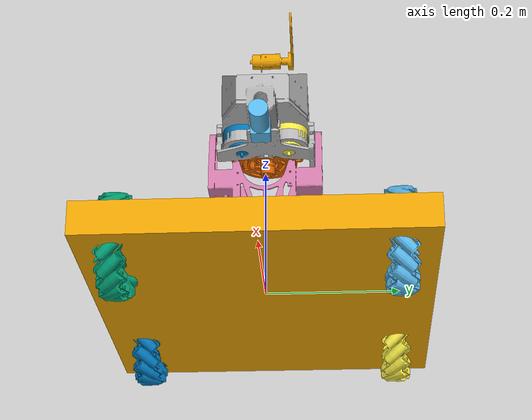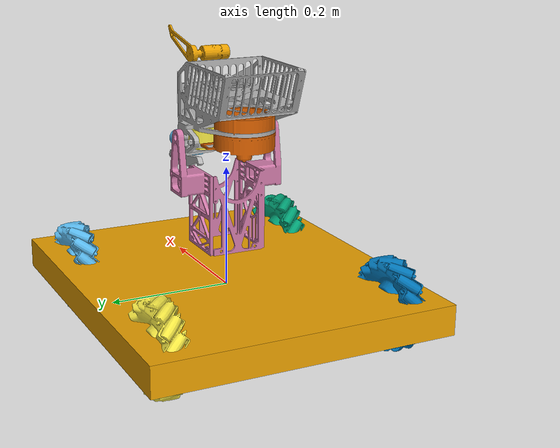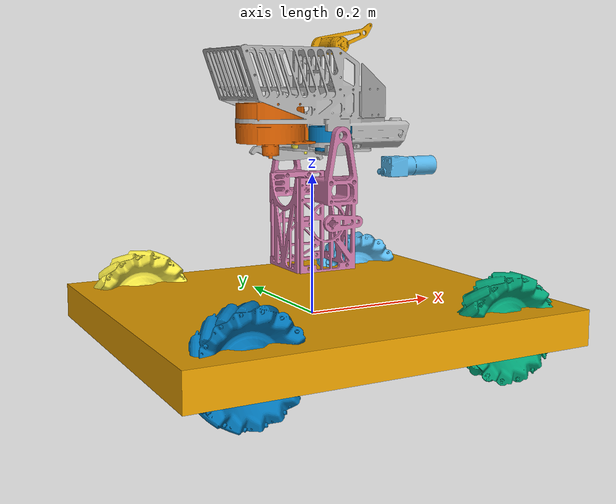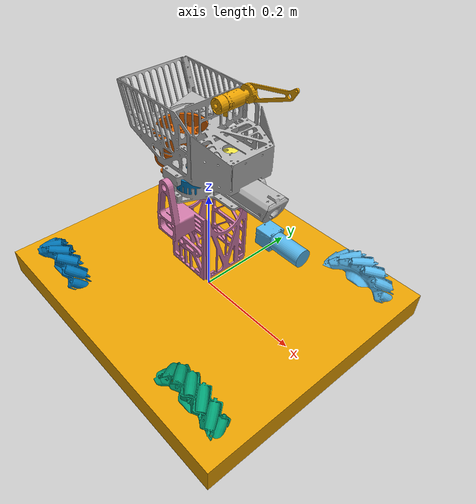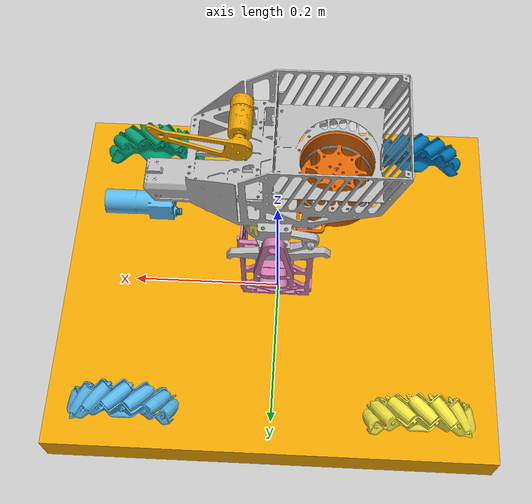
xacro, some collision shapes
<?xml version="1.0"?>
<robot xmlns:xacro="http://www.ros.org/wiki/xacro" name="standard3">

    <xacro:arg name="load_chassis" default="true"/>
    <xacro:arg name="load_gimbal" default="true"/>
    <xacro:arg name="load_shooter" default="true"/>
    <xacro:arg name="camera_link" default="camera_link"/>
    <xacro:arg name="camera_optical_frame" default="camera_optical_frame"/>
    <xacro:arg name="use_simulation" default="true"/>
    <xacro:arg name="roller_type" default="realistic"/>

    <xacro:if value="$(arg load_chassis)">
        <xacro:include filename="$(find rm_description)/urdf/standard/chassis.urdf.xacro"/>
        <xacro:chassis roller_type="$(arg roller_type)"/>
        <xacro:include filename="$(find rm_description)/urdf/common/imu.urdf.xacro"/>
        <xacro:IMU connected_to="base_link" imu_name="base_imu" simulation="true"
                   xyz="0.0 -0.165 0.0" rpy="0 0 ${pi}"/>
    </xacro:if>

    <xacro:if value="$(arg load_gimbal)">
        <xacro:include filename="$(find rm_description)/urdf/standard/gimbal.urdf.xacro"/>
        <xacro:include filename="$(find rm_description)/urdf/standard3/gimbal.transmission.urdf.xacro"/>
        <xacro:include filename="$(find rm_description)/urdf/common/camera.urdf.xacro"/>
        <xacro:camera_sensor xyz="0.127 0 -0.038" rpy="0 0 0" frame_id="$(arg camera_link)" parent="pitch"
                             camera_sim="$(arg use_simulation)"/>
        <xacro:camera_optical_frame xyz="0.089 -0.004 -0.053" rpy="1.593 0.0 1.567"
                                    frame_id="$(arg camera_optical_frame)" parent="pitch"
                                    camera_sim="$(arg use_simulation)"/>
    </xacro:if>

    <xacro:if value="$(arg load_shooter)">
        <xacro:include filename="$(find rm_description)/urdf/standard/shooter.urdf.xacro"/>
        <xacro:include filename="$(find rm_description)/urdf/standard3/shooter.transmission.urdf.xacro"/>
    </xacro:if>

    <xacro:if value="$(arg use_simulation)">
        <gazebo>
            <plugin name="rm_ros_control" filename="librm_robot_hw_sim.so">
                <robotNamespace>/</robotNamespace>
                <robotSimType>rm_gazebo/RmRobotHWSim</robotSimType>
            </plugin>
        </gazebo>
    </xacro:if>

</robot>

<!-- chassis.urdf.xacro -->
<robot xmlns:xacro="http://www.ros.org/wiki/xacro">

    <xacro:include filename="$(find rm_description)/urdf/common/mecanum_wheel.urdf.xacro"/>

    <!-- https://upload.wikimedia.org/wikipedia/commons/5/52/Wheelbase_and_Track.png -->
    <xacro:property name="wheel_track" value="0.380"/>
    <xacro:property name="wheel_base" value="0.395"/>
    <xacro:property name="wheel_offset_z" value="0.0"/>

    <xacro:macro name="chassis" params="roller_type">

        <link name="base_link">
            <inertial>
                <mass value="10.56"/>
                <origin xyz="-0.025077  0  0.055047"/>
                <inertia ixx="2.247e-1" ixy="-1.139e-5" ixz="2.983e-2" iyy="3.771e-1"
                         iyz="3.3454e-6" izz="4.803e-1"/>
            </inertial>
            <visual>
                <origin xyz="0 0 0" rpy="0 0 0"/>
                <geometry>
                    <mesh filename="package://rm_description/meshes/standard/base.stl" scale="0.001 0.001 0.001"/>
                </geometry>
            </visual>
            <collision>
                <origin xyz="0 0 0" rpy="0 0 0"/>
                <geometry>
                    <box size="0.580 0.500 0.050"/>
                </geometry>
            </collision>
        </link>

        <xacro:mecanum_wheel prefix="left_front" connected_to="base_link"
                             wheel_x_offset="${wheel_track/2}" wheel_y_offset="${wheel_base/2}"
                             wheel_z_offset="${wheel_offset_z}"
                             reflect="1" roller_type="${roller_type}"/>
        <xacro:mecanum_wheel prefix="right_front" connected_to="base_link"
                             wheel_x_offset="${wheel_track/2}" wheel_y_offset="${-wheel_base/2}"
                             wheel_z_offset="${wheel_offset_z}"
                             reflect="-1" roller_type="${roller_type}"/>
        <xacro:mecanum_wheel prefix="left_back" connected_to="base_link"
                             wheel_x_offset="${-wheel_track/2}" wheel_y_offset="${wheel_base/2}"
                             wheel_z_offset="${wheel_offset_z}"
                             reflect="-1" roller_type="${roller_type}"/>
        <xacro:mecanum_wheel prefix="right_back" connected_to="base_link"
                             wheel_x_offset="${-wheel_track/2}" wheel_y_offset="${-wheel_base/2}"
                             wheel_z_offset="${wheel_offset_z}"
                             reflect="1" roller_type="${roller_type}"/>
        <xacro:wheel_transmission prefix="left_front" mechanical_reduction="19.2032"/>
        <xacro:wheel_transmission prefix="right_front" mechanical_reduction="-19.2032"/>
        <xacro:wheel_transmission prefix="left_back" mechanical_reduction="19.2032"/>
        <xacro:wheel_transmission prefix="right_back" mechanical_reduction="-19.2032"/>

    </xacro:macro>

</robot>

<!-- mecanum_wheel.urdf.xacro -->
<robot xmlns:xacro="http://www.ros.org/wiki/xacro" name="mecanum_wheel">

    <xacro:property name="wheel_radius" value="0.07625"/>
    <xacro:property name="roller_radius" value="0.009"/>
    <xacro:property name="wheel_joint_effort" value="10"/>
    <xacro:property name="wheel_joint_velocity" value="70"/>

    <xacro:macro name="roller" params="prefix suffix theta roller_type">
        <!-- rotation math: roller_joint_axis -->
        <xacro:property name="sqrt_2_2" value="${sqrt(2)/2}"/>
        <xacro:property name="roller_joint_axis_x" value="${cos(theta) * sqrt_2_2}"/>
        <xacro:property name="roller_joint_axis_y" value="${-reflect * sqrt_2_2}"/>
        <xacro:property name="roller_joint_axis_z" value="${sin(theta) * sqrt_2_2}"/>
        <!-- rotation math: get quaternion between x_axis (1,0,0) and roller_joint_axis
        https://stackoverflow.com/questions/1171849/finding-quaternion-representing-the-rotation-from-one-vector-to-another -->
        <xacro:property name="quat_x" value="${0}"/>
        <xacro:property name="quat_y" value="${roller_joint_axis_z}"/>
        <xacro:property name="quat_z" value="${-roller_joint_axis_y}"/>
        <xacro:property name="quat_w" value="${-(1+roller_joint_axis_x)}"/>
        <xacro:property name="quat_length" value="${sqrt(quat_y*quat_y + quat_z * quat_z+quat_w * quat_w)}"/>
        <xacro:property name="quat_normal_x" value="${0}"/>
        <xacro:property name="quat_normal_y" value="${quat_y/quat_length}"/>
        <xacro:property name="quat_normal_z" value="${quat_z/quat_length}"/>
        <xacro:property name="quat_normal_w" value="${quat_w/quat_length}"/>

        <!--  link  -->
        <link name="${prefix}_roller_${suffix}">
            <collision>
                <xacro:if value="${roller_type=='realistic'}">
                    <!--  quat_xyzw dosen't work ?! covert to rpy-->
                    <origin rpy="${atan2(2. * (quat_normal_w * quat_normal_x + quat_normal_y * quat_normal_z),
                              1. - 2. * (quat_normal_x * quat_normal_x + quat_normal_y * quat_normal_y))}
                     ${asin(2. * (quat_normal_w * quat_normal_y - quat_normal_z * quat_normal_x))}
                     ${atan2(2. * (quat_normal_w * quat_normal_z + quat_normal_x * quat_normal_y),
                              1. - 2. * (quat_normal_y * quat_normal_y + quat_normal_z * quat_normal_z))}"
                            xyz="0 0 0"/>
                    <geometry>
                        <mesh filename="package://rm_description/meshes/common/roller.stl" scale="0.001 0.001 0.001"/>
                    </geometry>
                </xacro:if>
                <xacro:if value="${roller_type=='simple'}">
                    <geometry>
                        <sphere radius="${roller_radius}"/>
                    </geometry>
                </xacro:if>
            </collision>
            <inertial>
                <mass value="0.036"/>
                <inertia ixx="3128e-9" ixy="0.0" ixz="0.0" iyy="3128e-9" iyz="0.0" izz="3128e-9"/>
            </inertial>
        </link>

        <joint name="${prefix}_roller_${suffix}_joint" type="continuous">
            <origin
                    xyz="${(wheel_radius-roller_radius)*cos(theta-pi/2)} 0 ${(wheel_radius-roller_radius)*sin(theta-pi/2)}"
                    rpy="0 0 0"/>
            <axis xyz="${roller_joint_axis_x} ${roller_joint_axis_y} ${roller_joint_axis_z}"/>
            <dynamics damping="0.0" friction="0.001"/>
            <parent link="${prefix}_wheel"/>
            <child link="${prefix}_roller_${suffix}"/>
        </joint>

        <gazebo reference="${prefix}_roller_${suffix}">
            <mu1 value="2000.0"/>
            <mu2 value="2000.0"/>
            <kp value="1000000.0"/>
            <kd value="100.0"/>
            <material>Gazebo/Black</material>
        </gazebo>

    </xacro:macro>

    <xacro:macro name="mecanum_wheel"
                 params="prefix connected_to wheel_x_offset wheel_y_offset wheel_z_offset reflect roller_type">
        <!--  link  -->
        <link name="${prefix}_wheel">
            <visual>
                <geometry>
                    <xacro:if value="${reflect == 1}">
                        <mesh filename="package://rm_description/meshes/common/right_threaded_mecanum_wheel.stl"
                              scale="0.001 0.001 0.001"/>
                    </xacro:if>
                    <xacro:if value="${reflect == -1}">
                        <mesh filename="package://rm_description/meshes/common/left_threaded_mecanum_wheel.stl"
                              scale="0.001 0.001 0.001"/>
                    </xacro:if>
                </geometry>
            </visual>
            <inertial>
                <mass value="0.59"/>
                <inertia ixx="1.416e-3" ixy="0.0" ixz="0.0" iyy="2.749e-3" iyz="0.0" izz="1.416e-3"/>
            </inertial>
        </link>

        <!--  joint  -->
        <joint name="${prefix}_wheel_joint" type="revolute">
            <axis xyz="0 1 0"/>
            <origin xyz="${wheel_x_offset} ${wheel_y_offset} ${wheel_offset_z}" rpy="0 0 0"/>
            <!--      limit not work while type="continuous"-->
            <limit effort="${wheel_joint_effort}" velocity="${wheel_joint_velocity}" lower="-1e9" upper="1e9"/>
            <dynamics damping="0.0" friction="0.05"/>
            <parent link="${connected_to}"/>
            <child link="${prefix}_wheel"/>
        </joint>

        <xacro:unless value="${roller_type=='none'}">
            <!-- 16 roller  2pi/16=0.393-->
            <xacro:roller prefix="${prefix}" suffix="0" theta="${0*0.393}" roller_type="${roller_type}"/>
            <xacro:roller prefix="${prefix}" suffix="1" theta="${1*0.393}" roller_type="${roller_type}"/>
            <xacro:roller prefix="${prefix}" suffix="2" theta="${2*0.393}" roller_type="${roller_type}"/>
            <xacro:roller prefix="${prefix}" suffix="3" theta="${3*0.393}" roller_type="${roller_type}"/>
            <xacro:roller prefix="${prefix}" suffix="4" theta="${4*0.393}" roller_type="${roller_type}"/>
            <xacro:roller prefix="${prefix}" suffix="5" theta="${5*0.393}" roller_type="${roller_type}"/>
            <xacro:roller prefix="${prefix}" suffix="6" theta="${6*0.393}" roller_type="${roller_type}"/>
            <xacro:roller prefix="${prefix}" suffix="7" theta="${7*0.393}" roller_type="${roller_type}"/>
            <xacro:roller prefix="${prefix}" suffix="8" theta="${8*0.393}" roller_type="${roller_type}"/>
            <xacro:roller prefix="${prefix}" suffix="9" theta="${9*0.393}" roller_type="${roller_type}"/>
            <xacro:roller prefix="${prefix}" suffix="10" theta="${10*0.393}" roller_type="${roller_type}"/>
            <xacro:roller prefix="${prefix}" suffix="11" theta="${11*0.393}" roller_type="${roller_type}"/>
            <xacro:roller prefix="${prefix}" suffix="12" theta="${12*0.393}" roller_type="${roller_type}"/>
            <xacro:roller prefix="${prefix}" suffix="13" theta="${13*0.393}" roller_type="${roller_type}"/>
            <xacro:roller prefix="${prefix}" suffix="14" theta="${14*0.393}" roller_type="${roller_type}"/>
            <xacro:roller prefix="${prefix}" suffix="15" theta="${15*0.393}" roller_type="${roller_type}"/>
        </xacro:unless>

    </xacro:macro>

    <xacro:macro name="wheel_transmission" params="prefix mechanical_reduction">
        <transmission name="${prefix}_wheel_trans">
            <type>transmission_interface/SimpleTransmission</type>
            <actuator name="${prefix}_wheel_motor">
                <hardwareInterface>hardware_interface/EffortJointInterface</hardwareInterface>
                <mechanicalReduction>${mechanical_reduction}</mechanicalReduction>
            </actuator>
            <joint name="${prefix}_wheel_joint">
                <hardwareInterface>hardware_interface/EffortJointInterface</hardwareInterface>
            </joint>
        </transmission>
    </xacro:macro>

</robot>

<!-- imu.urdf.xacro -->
<!-- This file contains plugins to simulate an Imu sensor attached to the robot. -->
<!-- Documentation can be found at http://wiki.ros.org/hector_gazebo_plugins -->

<robot xmlns:xacro="http://www.ros.org/wiki/xacro" name="imu">
    <xacro:macro name="IMU" params="connected_to imu_name simulation xyz:='0 0 0' rpy:='0 0 0' ">
        <xacro:property name="imu_update_rate" value="200"/>
        <xacro:property name="imu_calibration_service_name" value="${imu_name}/calibrate"/>
        <xacro:property name="acceleration_offset" value="0.0 0.0 0.0"/>
        <xacro:property name="acceleration_drift" value="0.0 0.0 0.0"/>
        <xacro:property name="acceleration_drift_frequency" value="0.0 0.0 0.0"/>
        <xacro:property name="acceleration_gaussian_noise" value="0.1 0.1 0.1"/>
        <xacro:property name="rate_offset" value="0.0 0.0 0.0"/>
        <xacro:property name="rate_drift" value="0.0 0.0 0.0"/>
        <xacro:property name="rate_drift_frequency" value="0.0 0.0 0.0"/>
        <xacro:property name="rate_gaussian_noise" value="0.2 0.2 0.2"/>
        <xacro:property name="heading_offset" value="0.0"/>
        <xacro:property name="heading_drift" value="0.0"/>
        <xacro:property name="heading_drift_frequency" value="0.0"/>
        <xacro:property name="heading_gaussian_noise" value="0.3"/>

        <!-- Imu is fixed to the base link -->
        <joint name="${imu_name}_joint" type="fixed">
            <origin xyz="${xyz}" rpy="${rpy}"/>
            <parent link="${connected_to}"/>
            <child link="${imu_name}"/>
        </joint>

        <!-- Imu link -->
        <link name="${imu_name}">
            <inertial>
                <mass value="0.001"/>
                <origin rpy="0 0 0" xyz="0 0 0"/>
                <inertia ixx="0.0001" ixy="0" ixz="0" iyy="0.000001" iyz="0" izz="0.0001"/>
            </inertial>
            <visual>
                <origin rpy="0 0 0" xyz="0 0 0"/>
                <geometry>
                    <box size="0.015 0.015 0.004"/>
                </geometry>
            </visual>
            <material name="orange">
                <color rgba="255 108 10 255"/>
            </material>
        </link>
        <gazebo reference="${imu_name}">
            <material>Gazebo/Orange</material>
        </gazebo>
        <gazebo reference="${imu_name}_joint">
            <disableFixedJointLumping>true</disableFixedJointLumping>
        </gazebo>

        <xacro:if value="${simulation}">
            <gazebo>
                <plugin name="smb_imu_plugin" filename="libhector_gazebo_ros_imu.so">
                    <updateRate>${imu_update_rate}</updateRate>
                    <bodyName>${imu_name}</bodyName>
                    <frameId>${imu_name}</frameId>
                    <topicName>${imu_name}</topicName>
                    <serviceName>${imu_calibration_service_name}</serviceName>
                    <accelOffset>${acceleration_offset}</accelOffset>
                    <accelDrift>${acceleration_drift}</accelDrift>
                    <accelDriftFrequency>${acceleration_drift_frequency}</accelDriftFrequency>
                    <accelGaussianNoise>${acceleration_gaussian_noise}</accelGaussianNoise>
                    <rateOffset>${rate_offset}</rateOffset>
                    <rateDrift>${rate_drift}</rateDrift>
                    <rateDriftFrequency>${rate_drift_frequency}</rateDriftFrequency>
                    <rateGaussianNoise>${rate_gaussian_noise}</rateGaussianNoise>
                    <headingOffset>${heading_offset}</headingOffset>
                    <headingDrift>${heading_drift}</headingDrift>
                    <headingDriftFrequency>${heading_drift_frequency}</headingDriftFrequency>
                    <headingGaussianNoise>${heading_gaussian_noise}</headingGaussianNoise>
                </plugin>
            </gazebo>
        </xacro:if>

    </xacro:macro>
</robot>

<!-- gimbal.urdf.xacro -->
<robot xmlns:xacro="http://www.ros.org/wiki/xacro">

    <xacro:property name="threshold" value="0.1"/>
    <xacro:property name="pitch_lower_limit" value="-0.7"/>
    <xacro:property name="pitch_upper_limit" value="0.4"/>

        <link name="yaw">
            <inertial>
                <mass value="0.592087"/>
                <origin xyz="0 0 0.0127"/>
                <inertia ixx="6.17e-4" ixy="0." ixz="0." iyy="6.182e-4"
                         iyz="0." izz="1.07e-3"/>
            </inertial>
            <visual>
                <origin xyz="0 0 0" rpy="0 0 0"/>
                <geometry>
                    <mesh filename="package://rm_description/meshes/standard/yaw.stl" scale="0.001 0.001 0.001"/>
                </geometry>
            </visual>
            <collision>
                <origin xyz="0 0 0" rpy="0 0 0"/>
                <geometry>
                    <mesh filename="package://rm_description/meshes/standard/yaw.stl" scale="0.001 0.001 0.001"/>
                </geometry>
            </collision>
        </link>

        <joint name="yaw_joint" type="revolute">
            <origin xyz="0 0 0.0696"
                    rpy="0 0 0"/>
            <dynamics damping="0.0" friction="0.1"/>
            <limit effort="1.2" velocity="31" lower="-1e10" upper="1e10"/>
            <parent link="base_link"/>
            <child link="yaw"/>
            <axis xyz="0 0 1"/>
        </joint>

        <link name="pitch">
            <inertial>
                <mass value="1.475"/>
                <origin xyz="0.0168 -0.0028 0.0225"/>
                <inertia ixx="5.619e-3" ixy="1.192e-4" ixz="-1.795e-4" iyy="6.577e-3"
                         iyz="8.931e-5" izz="6.867e-3"/>
            </inertial>
            <visual>
                <origin xyz="0 0 0" rpy="0 0 0"/>
                <geometry>
                    <mesh filename="package://rm_description/meshes/standard/pitch.stl" scale="0.001 0.001 0.001"/>
                </geometry>
            </visual>
            <collision>
                <origin xyz="0 0 0" rpy="0 0 0"/>
                <geometry>
                    <mesh filename="package://rm_description/meshes/standard/pitch.stl" scale="0.001 0.001 0.001"/>
                </geometry>
            </collision>
        </link>

        <joint name="pitch_joint" type="revolute">
            <origin xyz="0 0 0.189" rpy="0 0 0"/>
            <dynamics damping="0.0" friction="0.1"/>
            <limit effort="1.2" velocity="13.82" lower="${pitch_lower_limit}" upper="${pitch_upper_limit}"/>
            <safety_controller k_position="100" k_velocity="0.1"
                               soft_lower_limit="${pitch_lower_limit+threshold}"
                               soft_upper_limit="${pitch_upper_limit-threshold}"/>
            <parent link="yaw"/>
            <child link="pitch"/>
            <axis xyz="0 1 0 "/>
        </joint>

    <link name="cover">
        <inertial>
            <mass value="0.149"/>
            <origin xyz="-0.008 -0.005 0.019"/>
            <inertia ixx="2.366e-3" ixy="-2.372e-4" ixz="-7.983e-4" iyy="2.959e-3" iyz="-2.826e-4" izz="9.090e-4"/>
        </inertial>
        <visual>
            <origin xyz="0 0 0" rpy="0 0 0"/>
            <geometry>
                <mesh filename="package://rm_description/meshes/standard/cover.stl" scale="0.001 0.001 0.001"/>
            </geometry>
        </visual>
        <collision>
            <origin xyz="0.033 0.0 -0.0" rpy="0 0.0 0"/>
            <geometry>
                <mesh filename="package://rm_description/meshes/standard/cover.stl" scale="0.001 0.001 0.001"/>
            </geometry>
        </collision>
    </link>

    <joint name="cover_joint" type="revolute">
        <axis xyz="0 0 1"/>
        <origin xyz="0.037 0.042 0.122"/>
        <limit effort="1.0" velocity="30" lower="-3.14" upper="3.14"/>
        <dynamics damping="0.0" friction="0.1"/>
        <parent link="pitch"/>
        <child link="cover"/>
    </joint>

</robot>

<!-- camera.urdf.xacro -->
<robot xmlns:xacro="http://www.ros.org/wiki/xacro">

    <xacro:macro name="camera_sensor" params="xyz rpy parent camera_sim">
        <joint name="camera_mount_joint" type="fixed">
            <axis xyz="0 1 0"/>
            <origin xyz="${xyz}" rpy="${rpy}"/>
            <parent link="${parent}"/>
            <child link="camera_link"/>
        </joint>

        <link name="camera_link">
            <visual>
                <origin xyz="0 0 0" rpy="0 0 0"/>
                <geometry>
                    <mesh filename="package://rm_description/meshes/common/camera.stl" scale="0.001 0.001 0.001"/>
                </geometry>
            </visual>
            <inertial>
                <mass value="0.17671"/>
                <origin xyz="0.022 0.0 0.0"/>
                <inertia ixx="2.129e-5" ixy="7.329e-8" ixz="-1.11e-7" iyy="2.198e-4" iyz="-8.04e-7" izz="2.197e-4"/>
            </inertial>
            <collision>
                <origin xyz="0 0 0" rpy="0 0 0"/>
                <geometry>
                    <mesh filename="package://rm_description/meshes/common/camera.stl" scale="0.001 0.001 0.001"/>
                </geometry>
            </collision>
        </link>
    </xacro:macro>

    <xacro:macro name="camera_optical_frame" params="xyz rpy parent camera_sim">
        <joint name="camera_optical_frame_joint" type="fixed">
            <origin xyz="${xyz}" rpy="${rpy}"/>
            <parent link="${parent}"/>
            <child link="camera_optical_frame"/>
        </joint>
        <link name="camera_optical_frame"/>

        <xacro:if value="${camera_sim}">
            <gazebo reference="camera_link">
                <sensor type="camera" name="camera">
                    <update_rate>100.0</update_rate>
                    <camera name="head">
                        <horizontal_fov>1.3962634</horizontal_fov>
                        <image>
                            <width>1920</width>
                            <height>1080</height>
                            <format>R8G8B8</format>
                        </image>
                        <clip>
                            <near>0.05</near>
                            <far>5</far>
                        </clip>
                        <noise>
                            <type>gaussian</type>
                            <mean>0.0</mean>
                            <stddev>0.007</stddev>
                        </noise>
                    </camera>
                    <plugin name="camera_controller" filename="libgazebo_ros_camera.so">
                        <alwaysOn>true</alwaysOn>
                        <updateRate>0.0</updateRate>
                        <cameraName>galaxy_camera</cameraName>
                        <imageTopicName>image_raw</imageTopicName>
                        <cameraInfoTopicName>camera_info</cameraInfoTopicName>
                        <frameName>camera_optical_frame</frameName>
                        <hackBaseline>0.07</hackBaseline>
                        <distortionK1>0.0</distortionK1>
                        <distortionK2>0.0</distortionK2>
                        <distortionK3>0.0</distortionK3>
                        <distortionT1>0.0</distortionT1>
                        <distortionT2>0.0</distortionT2>
                    </plugin>
                </sensor>
            </gazebo>
        </xacro:if>

    </xacro:macro>

</robot>

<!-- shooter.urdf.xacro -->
<robot xmlns:xacro="http://www.ros.org/wiki/xacro">

    <xacro:include filename="$(find rm_description)/urdf/common/friction.urdf.xacro"/>

    <xacro:property name="wheel_offset_x" value="0.00884"/>
    <xacro:property name="wheel_offset_y" value="0.036564"/>
    <xacro:property name="wheel_offset_z" value="0.0"/>

    <xacro:friction_wheel prefixs="left" connected_to="pitch"
                          wheel_x_offset="${wheel_offset_x}" wheel_y_offset="${wheel_offset_y}"
                          wheel_z_offset="${wheel_offset_z}"/>

    <xacro:friction_wheel prefixs="right" connected_to="pitch"
                          wheel_x_offset="${wheel_offset_x}" wheel_y_offset="${-wheel_offset_y}"
                          wheel_z_offset="${wheel_offset_z}"/>

    <link name="trigger">
        <inertial>
            <mass value="0.295177"/>
            <origin xyz="-0.00842 0.0 0.00605"/>
            <inertia ixx="2.255e-4" ixy="2.5698e-7" ixz="2.3929e-6" iyy="2.233e-4"
                     iyz="5.22e-7" izz="2.643e-4"/>
        </inertial>
        <visual>
            <origin xyz="0 0 0" rpy="0 0 0"/>
            <geometry>
                <mesh filename="package://rm_description/meshes/standard/trigger.stl" scale="0.001 0.001 0.001"/>
            </geometry>
        </visual>
        <collision>
            <origin xyz="0 0 0" rpy="0 0 0"/>
            <geometry>
                <mesh filename="package://rm_description/meshes/standard/trigger.stl" scale="0.001 0.001 0.001"/>
            </geometry>
        </collision>
    </link>

    <joint name="trigger_joint" type="continuous">
        <origin xyz="-0.064 0 0" rpy="0 0 0"/>
        <dynamics damping="0.0" friction="0.01"/>
        <limit effort="1.0" velocity="43.54" lower="-1e16" upper="1e16"/>
        <parent link="pitch"/>
        <child link="trigger"/>
        <axis xyz="0 0 1 "/>

    </joint>

</robot>

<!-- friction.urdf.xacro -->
<robot xmlns:xacro="http://www.ros.org/wiki/xacro">

    <xacro:macro name="friction_wheel" params="prefixs:='' connected_to:=''  wheel_x_offset:='0' wheel_y_offset:='0' wheel_z_offset:='0' ">

        <link name="${prefixs}_friction_wheel">
            <inertial>
                <mass value="0.15269"/>
                <origin xyz="0 0 -0.004"/>
                <inertia ixx="4.776e-5" ixy="2.192e-7" ixz="-1.28e-7" iyy="4.759e-5"
                         iyz="-1.683e-7" izz="6.148e-5"/>
            </inertial>
            <visual>
                <origin xyz="0 0 0" rpy="0 0 0"/>
                <geometry>
                    <mesh filename="package://rm_description/meshes/common/friction.stl" scale="0.001 0.001 0.001" />
                </geometry>
            </visual>
            <collision>
                <origin xyz="0 0 0" rpy="0 0 0"/>
                <geometry>
                    <mesh filename="package://rm_description/meshes/common/friction.stl"  scale="0.001 0.001 0.001" />
                </geometry>
            </collision>
        </link>

        <joint name="${prefixs}_friction_wheel_joint"  type="continuous">
            <origin xyz="${wheel_x_offset} ${wheel_y_offset} ${wheel_offset_z}" rpy="0 0 0"/>"
            <dynamics damping="0.0" friction="0.01"/>
            <limit upper="1e16" lower="-1e16" effort="0.156" velocity="942.00"/>
            <parent link="${connected_to}" />
            <child link="${prefixs}_friction_wheel" />
            <axis xyz="0 0 1" />

        </joint>

    </xacro:macro>
</robot>
